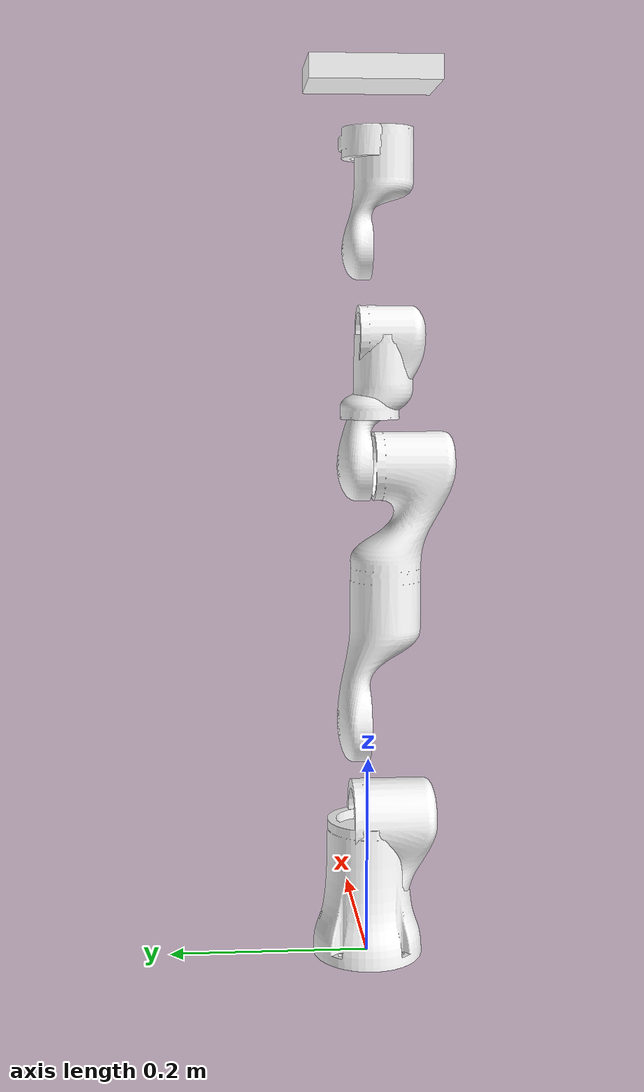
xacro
<?xml version="1.0" ?>
<robot name="rm_65" xmlns:xacro="http://www.ros.org/wiki/xacro">
<xacro:include filename="$(find rm_65_description)/urdf/rm_65.transmission.xacro"/>
<xacro:include filename="$(find rm_65_description)/urdf/rm_65.gazebo.xacro"/>
<xacro:include filename="$(find rm_65_description)/urdf/camera_sensors.gazebo.xacro"/>
<!-- Inertial matrix -->
<xacro:macro name="inertial_matrix" params="mass">
<inertial>
    <mass value="${mass}" />
    <inertia ixx="1.0" ixy="0.0" ixz="0.0" iyy="0.5" iyz="0.0" izz="1.0" />
</inertial>
</xacro:macro>
  <link
    name="base_link">
    <inertial>
      <origin
        xyz="0.000364099338239377 -0.000180492589223954 0.0523748178864983"
        rpy="0 0 0" />
      <mass
        value="14" />
      <inertia
        ixx="0.000737277875726733"
        ixy="1.52768076655905E-06"
        ixz="-1.75138967359717E-05"
        iyy="0.000723643543181375"
        iyz="-8.08320706906158E-07"
        izz="0.000487026166065825" />
    </inertial>
    <visual>
      <origin
        xyz="0 0 0"
        rpy="0 0 0" />
      <geometry>
        <mesh
          filename="package://rm_65_description/meshes/base_link.STL" />
      </geometry>
      <material
        name="">
        <color
          rgba="1 1 1 1" />
      </material>
    </visual>
    <collision>
      <origin
        xyz="0 0 0"
        rpy="0 0 0" />
      <geometry>
        <mesh
          filename="package://rm_65_description/meshes/base_link.STL" />
      </geometry>
    </collision>
  </link>

  <gazebo reference="base_link">
    <mu1 value="200000.0"/>
    <mu2 value="200000.0"/>
    <kp value="100000000.0"/>
    <kd value="1.0"/>
  </gazebo>

  <link
    name="Link1">
    <inertial>
      <origin
        xyz="-1.79862733952242E-05 -0.0216004812887538 0.0719258896443856"
        rpy="0 0 0" />
      <mass
        value="0.200843839724735" />
      <inertia
        ixx="0.000531136984021332"
        ixy="-4.32776127280478E-07"
        ixz="1.04793272362077E-06"
        iyy="0.000497444611373595"
        iyz="0.000106254355496355"
        izz="0.000282103590137435" />
    </inertial>
    <visual>
      <origin
        xyz="0 0 0"
        rpy="0 0 0" />
      <geometry>
        <mesh
          filename="package://rm_65_description/meshes/Link1.STL" />
      </geometry>
      <material
        name="">
        <color
          rgba="1 1 1 1" />
      </material>
    </visual>
    <collision>
      <origin
        xyz="0 0 0"
        rpy="0 0 0" />
      <geometry>
        <mesh
          filename="package://rm_65_description/meshes/Link1.STL" />
      </geometry>
    </collision>
  </link>
  <joint
    name="joint1"
    type="revolute">
    <origin
      xyz="0.00019414 0.0001 0.138"
      rpy="-2.3944E-16 0 3.1416" />
    <parent
      link="base_link" />
    <child
      link="Link1" />
    <axis
      xyz="0 0 1" />
    <limit
      lower="-3.14"
      upper="3.14"
      effort="300"
      velocity="3.14" />
	<dynamics damping="50" friction="1"/>
  </joint>
  <link
    name="Link2">
    <inertial>
      <origin
        xyz="0.133181684940056 -4.09216469913973E-05 0.0184216581306229"
        rpy="0 0 0" />
      <mass
        value="0.321307361964397" />
      <inertia
        ixx="0.000440014028766832"
        ixy="5.6579315252598E-07"
        ixz="-0.000654853772254918"
        iyy="0.00298539844077015"
        iyz="1.20748806355071E-07"
        izz="0.00284806640328522" />
    </inertial>
    <visual>
      <origin
        xyz="0 0 0"
        rpy="0 0 0" />
      <geometry>
        <mesh
          filename="package://rm_65_description/meshes/Link2.STL" />
      </geometry>
      <material
        name="">
        <color
          rgba="1 1 1 1" />
      </material>
    </visual>
    <collision>
      <origin
        xyz="0 0 0"
        rpy="0 0 0" />
      <geometry>
        <mesh
          filename="package://rm_65_description/meshes/Link2.STL" />
      </geometry>
    </collision>
  </link>
  <joint
    name="joint2"
    type="revolute">
    <origin
      xyz="0 0.016171 0.1012"
      rpy="1.5708 -1.5708 0" />
    <parent
      link="Link1" />
    <child
      link="Link2" />
    <axis
      xyz="0 0 -1" />
    <limit
      lower="-2.269"
      upper="2.269"
      effort="300"
      velocity="3.14" />
	<dynamics damping="50" friction="1"/>
  </joint>
  <link
    name="Link3">
    <inertial>
      <origin
        xyz="-3.56690328818382E-06 -0.0512866037910138 2.10951876323563E-05"
        rpy="0 0 0" />
      <mass
        value="0.102772515618803" />
      <inertia
        ixx="0.000236471825455939"
        ixy="-2.85439143488268E-09"
        ixz="-4.04883470632046E-10"
        iyy="7.36858171850124E-05"
        iyz="5.2218422744868E-05"
        izz="0.000233873582444284" />
    </inertial>
    <visual>
      <origin
        xyz="0 0 0"
        rpy="0 0 0" />
      <geometry>
        <mesh
          filename="package://rm_65_description/meshes/Link3.STL" />
      </geometry>
      <material
        name="">
        <color
          rgba="1 1 1 1" />
      </material>
    </visual>
    <collision>
      <origin
        xyz="0 0 0"
        rpy="0 0 0" />
      <geometry>
        <mesh
          filename="package://rm_65_description/meshes/Link3.STL" />
      </geometry>
    </collision>
  </link>
  <joint
    name="joint3"
    type="revolute">
    <origin
      xyz="0.25576 0 0.0035251"
      rpy="1.1972E-16 1.4979E-28 1.5708" />
    <parent
      link="Link2" />
    <child
      link="Link3" />
    <axis
      xyz="0 0 -1" />
    <limit
      lower="-2.356"
      upper="2.356"
      effort="300"
      velocity="3.14" />
	<dynamics damping="50" friction="1"/>
  </joint>
  <link
    name="Link4">
    <inertial>
      <origin
        xyz="6.79143687717758E-05 0.0172073813582943 0.0550497562490089"
        rpy="0 0 0" />
      <mass
        value="0.0751534548575527" />
      <inertia
        ixx="0.000114971629184183"
        ixy="1.55043636696422E-08"
        ixz="2.03173541830271E-07"
        iyy="0.000105991655073516"
        iyz="-2.1400189980959E-05"
        izz="5.71243912493456E-05" />
    </inertial>
    <visual>
      <origin
        xyz="0 0 0"
        rpy="0 0 0" />
      <geometry>
        <mesh
          filename="package://rm_65_description/meshes/Link4.STL" />
      </geometry>
      <material
        name="">
        <color
          rgba="1 1 1 1" />
      </material>
    </visual>
    <collision>
      <origin
        xyz="0 0 0"
        rpy="0 0 0" />
      <geometry>
        <mesh
          filename="package://rm_65_description/meshes/Link4.STL" />
      </geometry>
    </collision>
  </link>
  <joint
    name="joint4"
    type="revolute">
    <origin
      xyz="0 -0.128 0.013234"
      rpy="1.5708 0 1.2512E-12" />
    <parent
      link="Link3" />
    <child
      link="Link4" />
    <axis
      xyz="0 0 1" />
    <limit
      lower="-3.14"
      upper="3.14"
      effort="300"
      velocity="3.14" />
	<dynamics damping="50" friction="1"/>
  </joint>
  <link
    name="Link5">
    <inertial>
      <origin
        xyz="-2.14593281051834E-06 -0.049119542458982 0.00236936437088902"
        rpy="0 0 0" />
      <mass
        value="0.0716575200885179" />
      <inertia
        ixx="0.000135381803103201"
        ixy="2.17516760135376E-09"
        ixz="8.55618321137308E-10"
        iyy="4.67751191123099E-05"
        iyz="2.92366122866633E-05"
        izz="0.000132066640473067" />
    </inertial>
    <visual>
      <origin
        xyz="0 0 0"
        rpy="0 0 0" />
      <geometry>
        <mesh
          filename="package://rm_65_description/meshes/Link5.STL" />
      </geometry>
      <material
        name="">
        <color
          rgba="1 1 1 1" />
      </material>
    </visual>
    <collision>
      <origin
        xyz="0 0 0"
        rpy="0 0 0" />
      <geometry>
        <mesh
          filename="package://rm_65_description/meshes/Link5.STL" />
      </geometry>
    </collision>
  </link>
  <joint
    name="joint5"
    type="revolute">
    <origin
      xyz="0 -0.0121 0.0815"
      rpy="-1.5708 2.359E-12 5.6484E-28" />
    <parent
      link="Link4" />
    <child
      link="Link5" />
    <axis
      xyz="0 0 -1" />
    <limit
      lower="-2.182"
      upper="2.182"
      effort="300"
      velocity="3.14" />
	<dynamics damping="50" friction="1"/>
  </joint>
  <link
    name="Link6">
    <inertial>
      <origin
        xyz="0.000610923552198394 0.000226239439845178 0.0217158471531674"
        rpy="0 0 0" />
      <mass
        value="0.0321480840686874" />
      <inertia
        ixx="1.19996413785174E-05"
        ixy="-2.82372207081771E-08"
        ixz="9.42210764600823E-08"
        iyy="1.15507239688493E-05"
        iyz="-4.23625640293711E-08"
        izz="1.77260433647625E-05" />
    </inertial>
    <visual>
      <origin
        xyz="0 0 0"
        rpy="0 0 0" />
      <geometry>
        <mesh
          filename="package://rm_65_description/meshes/Link6.STL" />
      </geometry>
      <material
        name="">
        <color
          rgba="1 1 1 1" />
      </material>
    </visual>
    <collision>
      <origin
        xyz="0 0 0"
        rpy="0 0 0" />
      <geometry>
        <mesh
          filename="package://rm_65_description/meshes/Link6.STL" />
      </geometry>
    </collision>
  </link>
  <joint
    name="joint6"
    type="revolute">
    <origin
      xyz="0 -0.115 0.012437"
      rpy="1.5708 0 -2.359E-12" />
    <parent
      link="Link5" />
    <child
      link="Link6" />
    <axis
      xyz="0 0 1" />
    <limit
      lower="-6.28"
      upper="6.28"
      effort="300"
      velocity="1" />
	<dynamics damping="50" friction="1"/>
  </joint>

  <link name="camera">
    <visual>
      <origin
        xyz="0 0 0"
        rpy="0 0 0" />
      <geometry>
        <box size="0.083  0.023  0.126"/>
      </geometry>
      <material name="white">
          <color rgba="1 1 1 1"/>
      </material>
    </visual>
  </link>

  <joint name="camera_joint" type="fixed">
    <parent link="Link6"/>
    <child link="camera"/>
    <origin xyz="0 0 0.05"
      rpy="1.5708 0 0" />
  </joint>

    <!-- Transmissions for ROS Control -->
    <xacro:macro name="transmission_block" params="joint_name">
        <transmission name="tran1">
            <type>transmission_interface/SimpleTransmission</type>
            <joint name="${joint_name}">
                <hardwareInterface>hardware_interface/PositionJointInterface</hardwareInterface>
            </joint>
            <actuator name="motor1">
                <hardwareInterface>hardware_interface/PositionJointInterface</hardwareInterface>
                <mechanicalReduction>1</mechanicalReduction>
            </actuator>
        </transmission>
    </xacro:macro>

    <xacro:transmission_block joint_name="joint1"/>
    <xacro:transmission_block joint_name="joint2"/>
    <xacro:transmission_block joint_name="joint3"/>
    <xacro:transmission_block joint_name="joint4"/>
    <xacro:transmission_block joint_name="joint5"/>
    <xacro:transmission_block joint_name="joint6"/>

    <!-- ros_control plugin -->
    <gazebo>
        <plugin name="gazebo_ros_control" filename="libgazebo_ros_control.so">
            <robotNamespace>/arm</robotNamespace>
            <robotSimType>gazebo_ros_control/DefaultRobotHWSim</robotSimType>
            <legacyModeNS>true</legacyModeNS>
        </plugin>
    </gazebo>
</robot>
